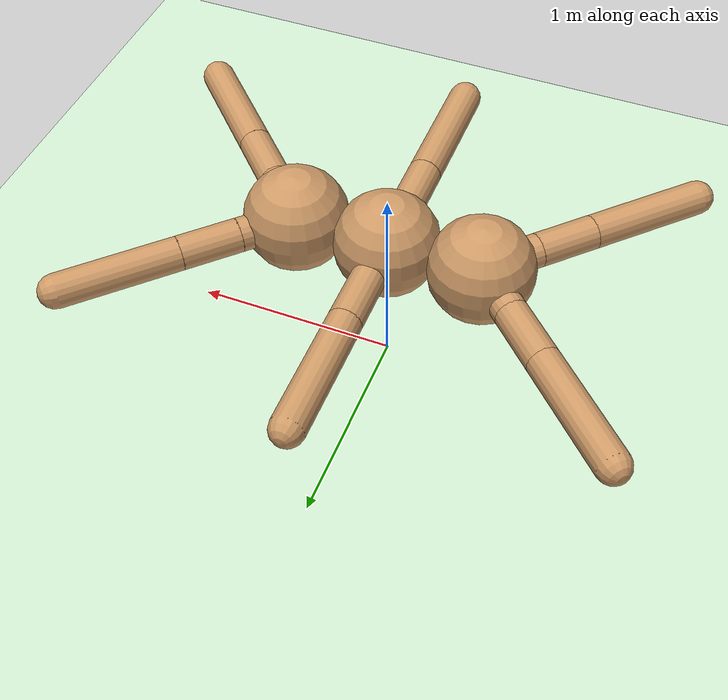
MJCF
<mujoco model="ant">
  <compiler angle="degree" coordinate="local" inertiafromgeom="true"/>
  <option integrator="RK4" timestep="0.01"/>
  <custom>
    <numeric data="0.0 0.0 0.55 1.0 0.0 0.0 0.0 0.0 1.0 0.0 -1.0 0.0 -1.0 0.0 1.0" name="init_qpos"/>
  </custom>
  <default>
    <joint armature="1" damping="1" limited="true"/>
    <geom conaffinity="0" condim="3" density="5.0" friction="1 0.5 0.5" margin="0.01" rgba="0.8 0.6 0.4 1"/>
  </default>
  <asset>
    <texture builtin="gradient" height="100" rgb1="1 1 1" rgb2="0 0 0" type="skybox" width="100"/>
    <texture builtin="flat" height="1278" mark="cross" markrgb="1 1 1" name="texgeom" random="0.01" rgb1="0.8 0.6 0.4" rgb2="0.8 0.6 0.4" type="cube" width="127"/>
    <texture builtin="checker" height="100" name="texplane" rgb1="0 0 0" rgb2="0.8 0.8 0.8" type="2d" width="100"/>
    <material name="MatPlane" reflectance="0.5" shininess="1" specular="1" texrepeat="60 60" texture="texplane"/>
    <material name="geom" texture="texgeom" texuniform="true"/>
  </asset>
  <worldbody>
    <light cutoff="100" diffuse="1 1 1" dir="-0 0 -1.3" directional="true" exponent="1" pos="0 0 1.3" specular=".1 .1 .1"/>
    <geom conaffinity="1" condim="3" material="MatPlane" name="floor" pos="0 0 0" rgba="0.8 0.9 0.8 1" size="40 40 40" type="plane"/>

    <body name="torso" pos="0 0 0.75">
      <camera name="track" mode="trackcom" pos="0 -3 0.3" xyaxes="1 0 0 0 0 1"/>
      <geom name="torso_geom" pos="0 0 0" size="0.25" type="sphere"/>
      <joint armature="0" damping="0" limited="false" margin="0.01" name="root" pos="0 0 0" type="free"/>

      <body name="center" pos="0 0 0">
        <geom name="center_geom" pos="0 0 0" size="0.25" type="sphere"/>

        <body name="center_left_leg" pos="0 0 0">
          <geom fromto="0.0 0.0 0.0 0.0 -0.2 0.0" name="center_left_leg_geom" size="0.08" type="capsule"/>
          <body name="aux_1_center" pos="-0.0 -0.2 0">
            <joint axis="0 0 -1" name="hip_1_center" pos="0.0 0.0 0.0" range="-30 70" type="hinge"/>
            <geom fromto="0.0 0.0 0.0 0.0 -0.3 0.0" name="left_leg_geom_center" size="0.08" type="capsule"/>
            <body pos="0.0 -0.3 0">
              <joint axis="1 -1 0" name="ankle_1_center" pos="0.0 0.0 0.0" range="30 70" type="hinge"/>
              <geom fromto="0.0 0.0 0.0 0.0 -0.6 0.0" name="left_ankle_geom_center" size="0.08" type="capsule"/>
            </body>
          </body>
        </body>

        <body name="center_right_leg" pos="0 0 0">
          <geom fromto="0.0 0.0 0.0 0.0 0.2 0.0" name="center_right_leg_geom" size="0.08" type="capsule"/>
          <body name="aux_2_center" pos="-0.0 0.2 0">
            <joint axis="0 0 1" name="hip_2_center" pos="0.0 0.0 0.0" range="-30 30" type="hinge"/>
            <geom fromto="0.0 0.0 0.0 0.0 0.3 0.0" name="right_leg_geom_center" size="0.08" type="capsule"/>
            <body pos="0.0 0.3 0">
              <joint axis="1 1 0" name="ankle_2_center" pos="0.0 0.0 0.0" range="-70 -30" type="hinge"/>
              <geom fromto="0.0 0.0 0.0 0.0 0.6 0.0" name="right_ankle_geom_center" size="0.08" type="capsule"/>
            </body>
          </body>
        </body>
      </body>

      <body name="front" pos="0.45 0 0">
        <geom name="front_geom" pos="0 0 0" size="0.25" type="sphere"/>
        <body name="front_left_leg" pos="0 0 0">
          <geom fromto="0.0 0.0 0.0 0.2 0.2 0.0" name="front_left_leg_geom" size="0.08" type="capsule"/>
          <body name="aux_3_front" pos="0.2 0.2 0">
            <joint axis="0 0 1" name="hip_3_front" pos="0.0 0.0 0.0" range="-30 30" type="hinge"/>
            <geom fromto="0.0 0.0 0.0 0.2 0.2 0.0" name="left_leg_geom_front" size="0.08" type="capsule"/>
            <body pos="0.2 0.2 0">
              <joint axis="-1 1 0" name="ankle_3_front" pos="0.0 0.0 0.0" range="30 70" type="hinge"/>
              <geom fromto="0.0 0.0 0.0 0.4 0.4 0.0" name="left_ankle_geom_front" size="0.08" type="capsule"/>
            </body>
          </body>
        </body>

        <body name="front_right_leg" pos="0 0 0">
          <geom fromto="0.0 0.0 0.0 0.2 -0.2 0.0" name="front_right_leg_geom" size="0.08" type="capsule"/>
          <body name="aux_4_front" pos="0.2 -0.2 0">
            <joint axis="0 0 1" name="hip_4_front" pos="0.0 0.0 0.0" range="-30 30" type="hinge"/>
            <geom fromto="0.0 0.0 0.0 0.2 -0.2 0.0" name="right_leg_geom_front" size="0.08" type="capsule"/>
            <body pos="0.2 -0.2 0">
              <joint axis="1 1 0" name="ankle_4_front" pos="0.0 0.0 0.0" range="30 70" type="hinge"/>
              <geom fromto="0.0 0.0 0.0 0.4 -0.4 0.0" name="right_ankle_geom_front" size="0.08" type="capsule"/>
            </body>
          </body>
        </body>
      </body>

      <body name="back" pos="-0.45 0 0">
        <geom name="back_geom" pos="0 0 0" size="0.25" type="sphere"/>
        <body name="back_left_leg" pos="0 0 0">
          <geom fromto="0.0 0.0 0.0 -0.2 -0.2 0.0" name="back_left_leg_geom" size="0.08" type="capsule"/>
          <body name="aux_5_back" pos="-0.2 -0.2 0">
            <joint axis="0 0 1" name="hip_5_back" pos="0.0 0.0 0.0" range="-30 30" type="hinge"/>
            <geom fromto="0.0 0.0 0.0 -0.2 -0.2 0.0" name="left_leg_geom_back" size="0.08" type="capsule"/>
            <body pos="-0.2 -0.2 0">
              <joint axis="-1 1 0" name="ankle_5_back" pos="0.0 0.0 0.0" range="-70 -30" type="hinge"/>
              <geom fromto="0.0 0.0 0.0 -0.4 -0.4 0.0" name="left_ankle_geom_back" size="0.08" type="capsule"/>
            </body>
          </body>
        </body>

        <body name="back_right_leg" pos="0 0 0">
          <geom fromto="0.0 0.0 0.0 -0.2 0.2 0.0" name="back_right_leg_geom" size="0.08" type="capsule"/>
          <body name="aux_6_back" pos="-0.2 0.2 0">
            <joint axis="0 0 1" name="hip_6_back" pos="0.0 0.0 0.0" range="-30 30" type="hinge"/>
            <geom fromto="0.0 0.0 0.0 -0.2 0.2 0.0" name="right_leg_geom_back" size="0.08" type="capsule"/>
            <body pos="-0.2 0.2 0">
              <joint axis="1 1 0" name="ankle_6_back" pos="0.0 0.0 0.0" range="-70 -30" type="hinge"/>
              <geom fromto="0.0 0.0 0.0 -0.4 0.4 0.0" name="right_ankle_geom_back" size="0.08" type="capsule"/>
            </body>
          </body>
        </body>
      </body>
    </body>
  </worldbody>
  <actuator>
    <motor ctrllimited="true" ctrlrange="-1.0 1.0" joint="hip_1_center" gear="150"/>
    <motor ctrllimited="true" ctrlrange="-1.0 1.0" joint="ankle_1_center" gear="150"/>
    <motor ctrllimited="true" ctrlrange="-1.0 1.0" joint="hip_2_center" gear="150"/>
    <motor ctrllimited="true" ctrlrange="-1.0 1.0" joint="ankle_2_center" gear="150"/>
    <motor ctrllimited="true" ctrlrange="-1.0 1.0" joint="hip_3_front" gear="150"/>
    <motor ctrllimited="true" ctrlrange="-1.0 1.0" joint="ankle_3_front" gear="150"/>
    <motor ctrllimited="true" ctrlrange="-1.0 1.0" joint="hip_4_front" gear="150"/>
    <motor ctrllimited="true" ctrlrange="-1.0 1.0" joint="ankle_4_front" gear="150"/>
    <motor ctrllimited="true" ctrlrange="-1.0 1.0" joint="hip_5_back" gear="150"/>
    <motor ctrllimited="true" ctrlrange="-1.0 1.0" joint="ankle_5_back" gear="150"/>
    <motor ctrllimited="true" ctrlrange="-1.0 1.0" joint="hip_6_back" gear="150"/>
    <motor ctrllimited="true" ctrlrange="-1.0 1.0" joint="ankle_6_back" gear="150"/>
  </actuator>
</mujoco>
